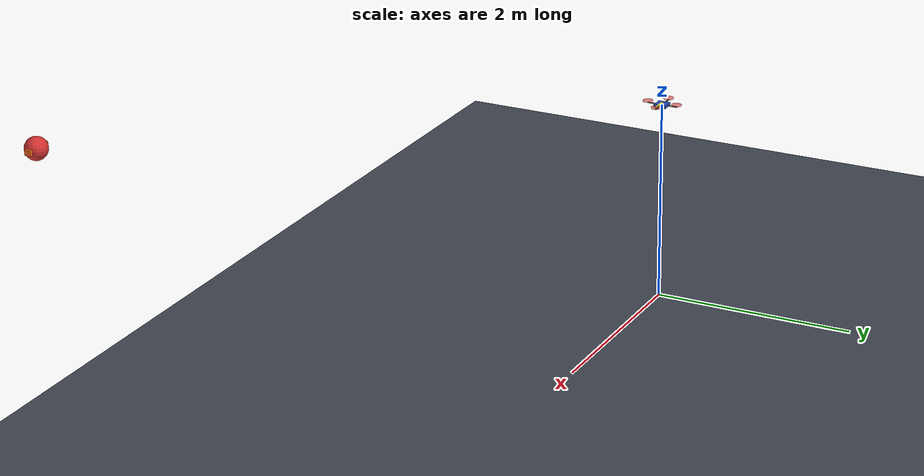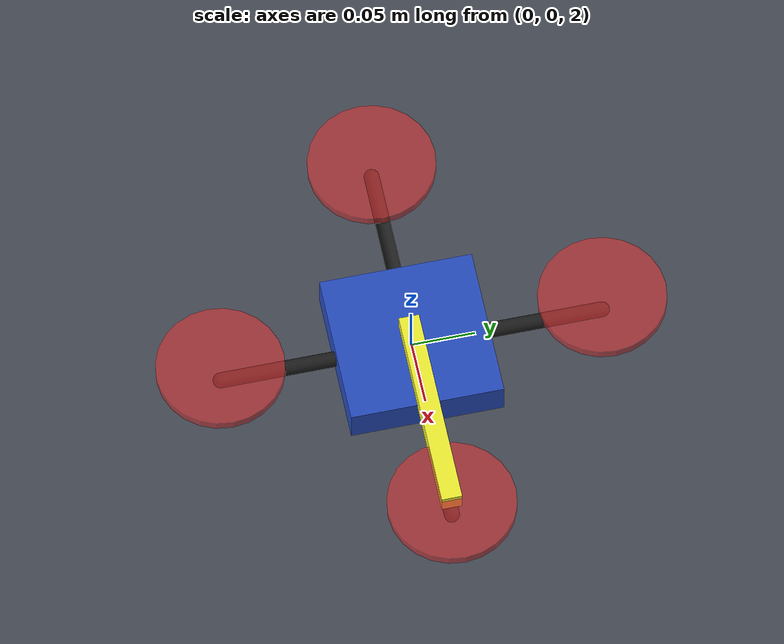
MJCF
<mujoco model="scene">
  <compiler angle="radian" autolimits="true"/>
  <option timestep="0.0025" integrator="RK4" density="0" viscosity="0"/>

  <visual>
    <global offwidth="640" offheight="480"/>
    <headlight diffuse="0.55 0.55 0.55" ambient="0.3 0.3 0.3"/>
    <quality shadowsize="2048"/>
  </visual>

  <worldbody>
    <light name="top" pos="0 0 12" dir="0 0 -1" directional="true"/>
    <geom name="floor" type="plane" size="60 60 0.1" rgba="0.27 0.29 0.33 1"/>
  </worldbody>

  <include file="quadcopter.xml"/>
  <include file="target.xml"/>
</mujoco>

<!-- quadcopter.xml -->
<mujoco model="quadcopter">
  <default>
    <default class="rotor_site">
      <site type="cylinder" size="0.05 0.004" rgba="0.9 0.2 0.2 0.6"/>
    </default>
    <default class="arm">
      <geom type="capsule" size="0.006" rgba="0.12 0.12 0.12 1" mass="0"/>
    </default>
  </default>

  <worldbody>
    <body name="interceptor" pos="0 0 2">
      <freejoint name="interceptor_root"/>
      <!-- Explicit inertial: mass/inertia come from constants.py, not geom defaults. -->
      <inertial pos="0 0 0" mass="1.0" diaginertia="0.01 0.01 0.02"/>

      <geom name="interceptor_core" type="box" size="0.06 0.06 0.015"
            rgba="0.15 0.30 0.75 1" mass="0"/>

      <!-- Arms out to each rotor (visual only; mass is in the inertial element). -->
      <geom name="arm_front" class="arm" fromto="0 0 0  0.15 0 0"/>
      <geom name="arm_right" class="arm" fromto="0 0 0  0 -0.15 0"/>
      <geom name="arm_back"  class="arm" fromto="0 0 0 -0.15 0 0"/>
      <geom name="arm_left"  class="arm" fromto="0 0 0  0 0.15 0"/>

      <!-- Rotor thrust application points, in MotorCommand order. -->
      <site name="rotor0_front" class="rotor_site" pos=" 0.15  0.00 0.02"/>
      <site name="rotor1_right" class="rotor_site" pos=" 0.00 -0.15 0.02"/>
      <site name="rotor2_back"  class="rotor_site" pos="-0.15  0.00 0.02"/>
      <site name="rotor3_left"  class="rotor_site" pos=" 0.00  0.15 0.02"/>

      <!-- Heading marker so attitude is visible in the replay viewer. -->
      <site name="interceptor_nose" type="box" size="0.08 0.008 0.008" pos="0.07 0 0.02"
            rgba="0.95 0.95 0.2 1"/>
    </body>
  </worldbody>
</mujoco>

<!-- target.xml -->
<mujoco model="target">
  <worldbody>
    <body name="target" mocap="true" pos="10 0 5">
      <geom name="target_body" type="sphere" size="0.08" rgba="0.85 0.20 0.20 1"
            contype="0" conaffinity="0"/>
      <site name="target_marker" type="box" size="0.10 0.02 0.02" rgba="0.95 0.4 0.1 1"/>
    </body>
  </worldbody>
</mujoco>
